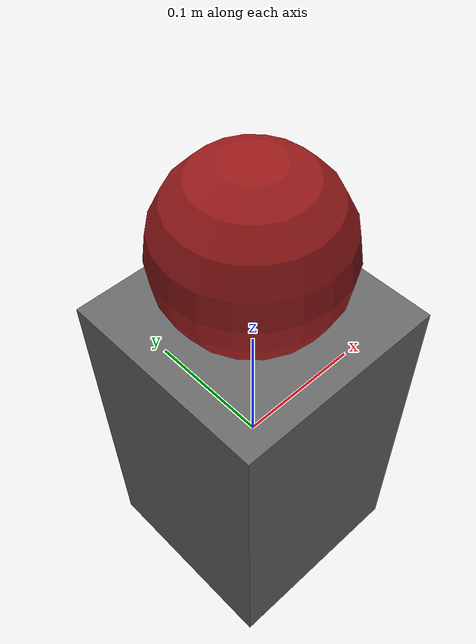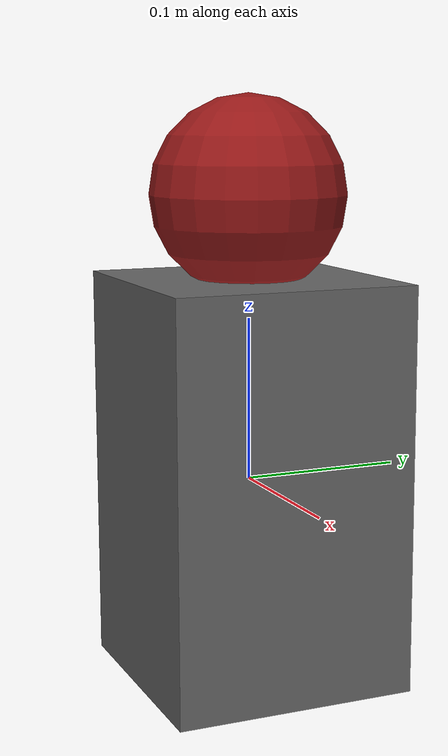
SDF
<?xml version="1.0" ?>
<sdf version="1.8">
  <model name="alarm_01">
    <static>true</static>

    <!-- Alarm housing -->
    <link name="base_link">
      <!-- Box housing -->
      <visual name="housing_visual">
        <geometry>
          <box><size>0.15 0.15 0.25</size></box>
        </geometry>
        <material>
          <ambient>0.3 0.3 0.3 1</ambient>
          <diffuse>0.4 0.4 0.4 1</diffuse>
        </material>
      </visual>
      <collision name="housing_collision">
        <geometry>
          <box><size>0.15 0.15 0.25</size></box>
        </geometry>
      </collision>

      <!-- Lens dome on top -->
      <visual name="lens_visual">
        <pose>0 0 0.175 0 0 0</pose>
        <geometry>
          <sphere><radius>0.06</radius></sphere>
        </geometry>
        <material>
          <ambient>0.4 0.05 0.05 1</ambient>
          <diffuse>0.6 0.1 0.1 1</diffuse>
        </material>
      </visual>
    </link>

    <!-- Fix to world -->
    <joint name="frame_fix" type="fixed">
      <parent>world</parent>
      <child>base_link</child>
    </joint>

    <!-- Alarm Plugin: flashes lens_visual color between red and dark -->
    <plugin filename="AlarmPlugin" name="syncai::AlarmPlugin">
      <link_name>base_link</link_name>
      <visual_name>lens_visual</visual_name>
      <flash_period>1.0</flash_period>
      <detection_range>3.0</detection_range>
    </plugin>

  </model>
</sdf>
